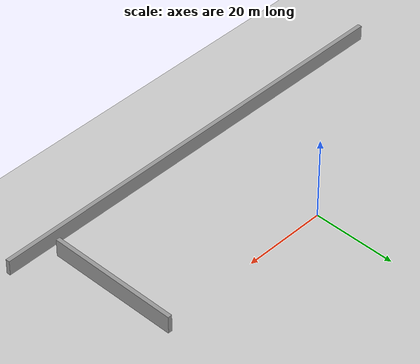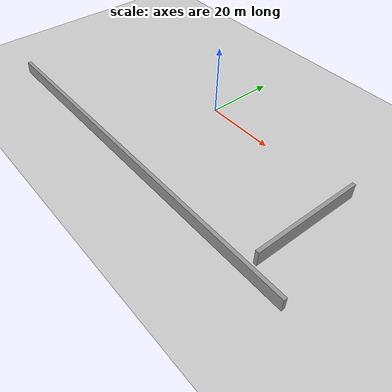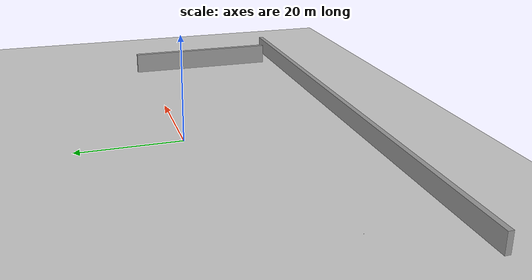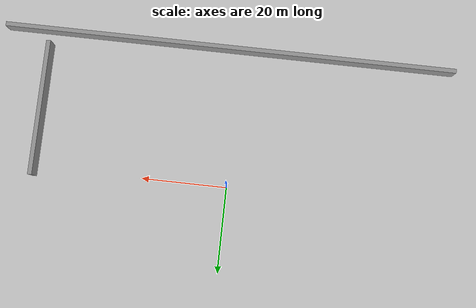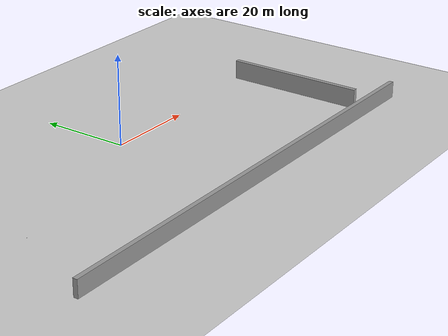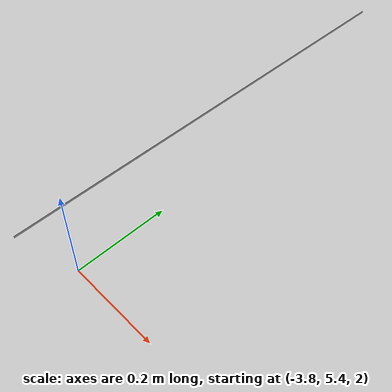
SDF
<sdf version="1.7">
 <world name="empty_world">
  <physics type="ode">
   <real_time_update_rate>1000</real_time_update_rate>
   <max_step_size>0.001</max_step_size>
   <real_time_factor>1</real_time_factor>
   <ode>
    <solver>
     <type>quick</type>
     <iters>150</iters>
     <precon_iters>0</precon_iters>
     <sor>1.4</sor>
     <use_dynamic_moi_rescaling>1</use_dynamic_moi_rescaling>
    </solver>
    <constraints>
     <cfm>5e-05</cfm>
     <erp>0.2</erp>
     <contact_max_correcting_vel>100</contact_max_correcting_vel>
     <contact_surface_layer>0.001</contact_surface_layer>
    </constraints>
   </ode>
  </physics>
  <scene><ambient>0.4 0.4 0.4 1</ambient><background>0.7 0.7 0.7 1</background><shadows>1</shadows></scene>
  <light name="sun" type="directional">
   <pose>0 0 10 0 -0 0</pose>
   <diffuse>0.8 0.8 0.8 1</diffuse>
   <specular>0.2 0.2 0.2 1</specular>
   <attenuation>
    <range>1000</range>
    <constant>0.9</constant>
    <linear>0.01</linear>
    <quadratic>0.001</quadratic>
   </attenuation>
   <direction>-0.5 0.1 -0.9</direction>
   <spot><inner_angle>0</inner_angle><outer_angle>0</outer_angle><falloff>0</falloff></spot>
  </light>
  <model name="ground_plane">
   <static>1</static>
   <link name="link">
    <collision name="collision">
     <geometry><plane><normal>0 0 1</normal><size>100 100</size></plane></geometry>
    </collision>
    <visual name="visual">
     <geometry><plane><normal>0 0 1</normal><size>100 100</size></plane></geometry>
     <material>
      <ambient>0.8 0.8 0.8 1</ambient>
      <diffuse>0.8 0.8 0.8 1</diffuse>
      <specular>0.8 0.8 0.8 1</specular>
     </material>
    </visual>
   </link>
  </model>
  <spherical_coordinates>
   <surface_model>EARTH_WGS84</surface_model>
   <world_frame_orientation>ENU</world_frame_orientation>
   <latitude_deg>0</latitude_deg>
   <longitude_deg>0</longitude_deg>
   <elevation>0</elevation>
   <heading_deg>0</heading_deg>
  </spherical_coordinates>
  <gravity>0 0 -9.8</gravity>
  <magnetic_field>6e-06 2.3e-05 -4.2e-05</magnetic_field>
  <atmosphere type="adiabatic"/>
  <model name="unit_box">
   <pose>-3.89389 5.84138 2.06365 0 -0 0</pose>
   <link name="link">
    <inertial>
     <mass>1</mass>
     <inertia>
      <ixx>0.166667</ixx>
      <ixy>0</ixy>
      <ixz>0</ixz>
      <iyy>0.166667</iyy>
      <iyz>0</iyz>
      <izz>0.166667</izz>
     </inertia>
    </inertial>
    <collision name="collision"><geometry><box><size>0 1 0.00540034</size></box></geometry></collision>
    <visual name="visual">
     <geometry><box><size>0 1 0.00540034</size></box></geometry>
     <material>
      <script><name>Gazebo/Grey</name><uri>file://media/materials/scripts/gazebo.material</uri></script>
     </material>
    </visual>
   </link>
  </model>
  <model name="unit_box_clone">
   <pose>2.68578 -32.6575 2.06365 0 -0 0</pose>
   <link name="link">
    <inertial>
     <mass>1</mass>
     <inertia>
      <ixx>0.166667</ixx>
      <ixy>0</ixy>
      <ixz>0</ixz>
      <iyy>0.166667</iyy>
      <iyz>0</iyz>
      <izz>0.166667</izz>
     </inertia>
    </inertial>
    <collision name="collision"><geometry><box><size>106.402 1 3.68876</size></box></geometry></collision>
    <visual name="visual">
     <geometry><box><size>106.402 1 3.68876</size></box></geometry>
     <material>
      <script><name>Gazebo/Grey</name><uri>file://media/materials/scripts/gazebo.material</uri></script>
     </material>
    </visual>
   </link>
  </model>
  <model name="unit_box_0">
   <pose>-43.2268 -15.1633 2.54637 0 -0 0</pose>
   <link name="link">
    <inertial>
     <mass>1</mass>
     <inertia>
      <ixx>0.166667</ixx>
      <ixy>0</ixy>
      <ixz>0</ixz>
      <iyy>0.166667</iyy>
      <iyz>0</iyz>
      <izz>0.166667</izz>
     </inertia>
    </inertial>
    <collision name="collision"><geometry><box><size>1 0 0.00288277</size></box></geometry></collision>
    <visual name="visual">
     <geometry><box><size>1 0 0.00288277</size></box></geometry>
     <material>
      <script><name>Gazebo/Grey</name><uri>file://media/materials/scripts/gazebo.material</uri></script>
     </material>
    </visual>
   </link>
  </model>
  <model name="unit_box_0_clone">
   <pose>45.1089 -13.6894 2.54637 0 -0 0</pose>
   <link name="link">
    <inertial>
     <mass>1</mass>
     <inertia>
      <ixx>0.166667</ixx>
      <ixy>0</ixy>
      <ixz>0</ixz>
      <iyy>0.166667</iyy>
      <iyz>0</iyz>
      <izz>0.166667</izz>
     </inertia>
    </inertial>
    <collision name="collision"><geometry><box><size>1 31.6238 4.31552</size></box></geometry></collision>
    <visual name="visual">
     <geometry><box><size>1 31.6238 4.31552</size></box></geometry>
     <material>
      <script><name>Gazebo/Grey</name><uri>file://media/materials/scripts/gazebo.material</uri></script>
     </material>
    </visual>
   </link>
  </model>
 </world>
</sdf>
